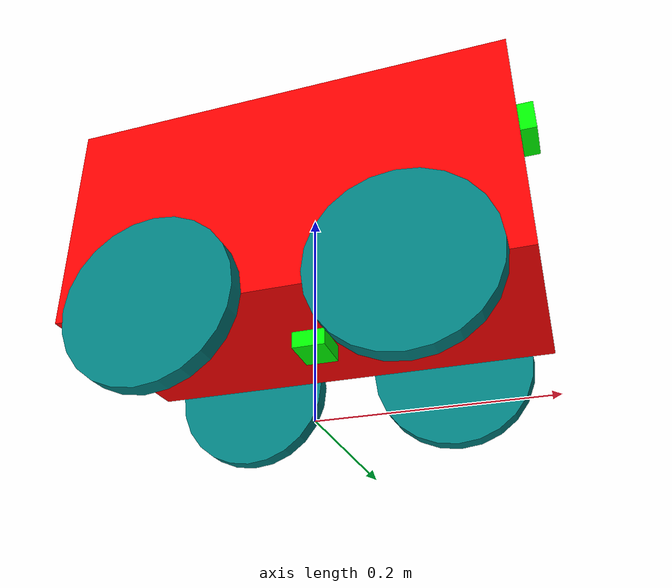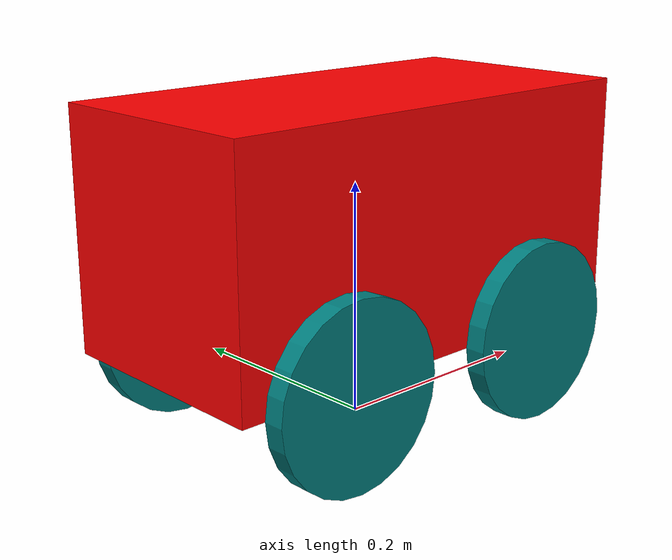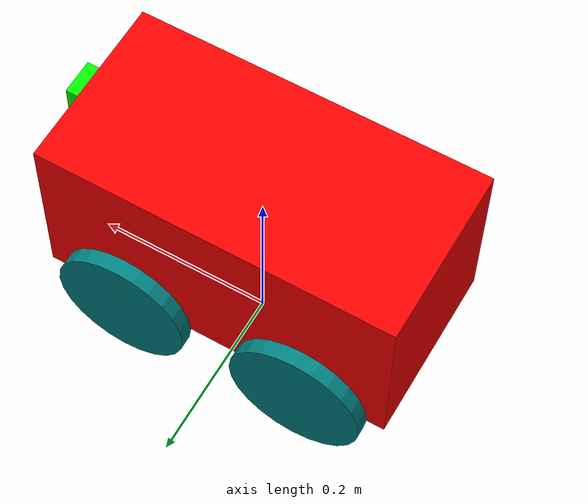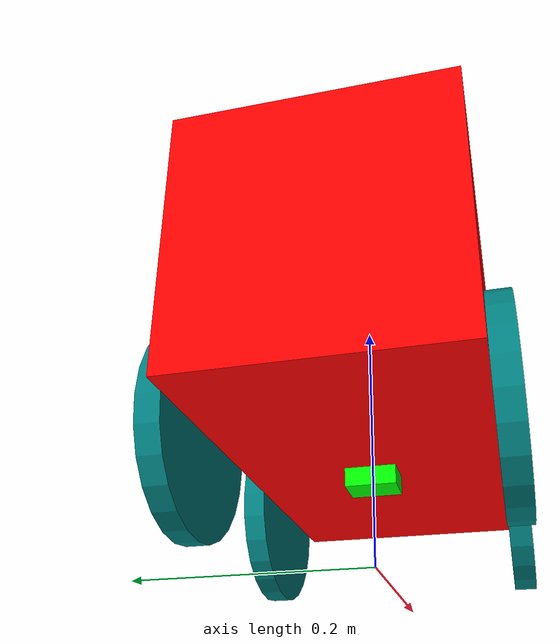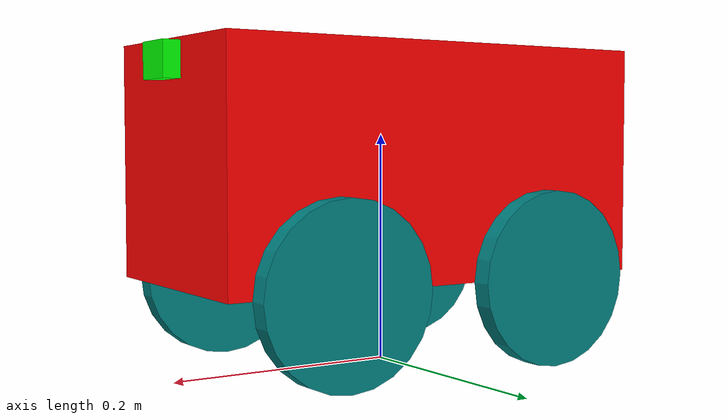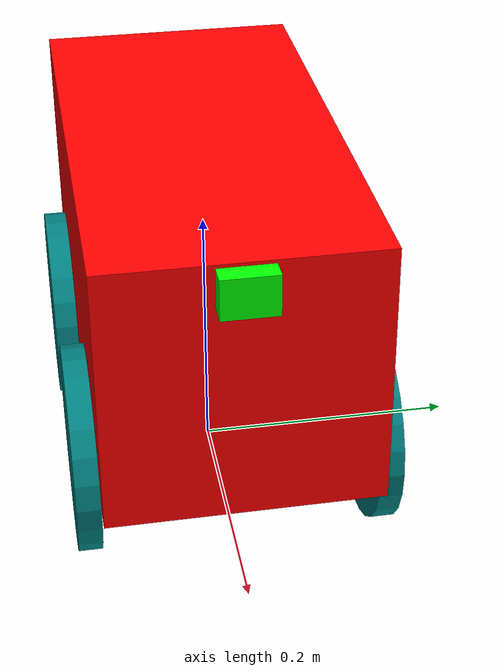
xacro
<?xml version="1.0"?>

<robot xmlns:xacro="http://www.ros.org/wiki/xacro" name="farmr">

    <xacro:property name="PI" value="3.1415"/>

    <xacro:property name="base_width" value="0.20"/>
    <xacro:property name="base_height" value="0.20"/>
    <xacro:property name="base_depth" value="0.40"/>

    <xacro:property name="wheel_rad" value="0.076"/>
    <xacro:property name="wheel_len" value="0.01750"/>
    <xacro:property name="wheel_posY" value="${base_width/2 + wheel_len/2}"/>
    <xacro:property name="wheel_offset" value="${wheel_rad}"/>
    <xacro:property name="wheel_posZ" value="-${(((base_height/2)+wheel_offset)-(wheel_rad*2))+(wheel_rad)}"/>
    <xacro:property name="wheel_posX" value="-${(base_depth/2)-(wheel_rad + 0.02)}"/>

    <xacro:property name="caster_rad" value="${wheel_rad/2.0}"/>
    <xacro:property name="caster_posZ" value="-${(((base_height/2)+wheel_offset)-(wheel_rad*2))+(wheel_rad)}"/>
    <xacro:property name="caster_posX" value="${(base_depth/2)-(wheel_rad + 0.02)}"/>

    <xacro:property name="cam_width" value="0.040"/>
    <xacro:property name="cam_height" value="0.015"/>
    <xacro:property name="cam_depth" value="0.030"/>
    <xacro:property name="cam_posZ" value="${(cam_height/2.0)+(base_height/2.0)}"/>

    <!-- ===================== MASSES (tune these to your real robot) ===================== -->
    <xacro:property name="mass_base" value="15.0"/>
    <xacro:property name="mass_wheel" value="1.2"/>
    <xacro:property name="mass_caster" value="0.15"/>
    <xacro:property name="mass_cam" value="0.05"/>

    <!-- ===================== INERTIA MACROS ===================== -->
    <!-- Solid box: dims along x, y, z -->
    <xacro:macro name="box_inertia" params="mass x y z">
        <inertia
            ixx="${(1.0/12.0)*mass*(y*y+z*z)}" ixy="0" ixz="0"
            iyy="${(1.0/12.0)*mass*(x*x+z*z)}" iyz="0"
            izz="${(1.0/12.0)*mass*(x*x+y*y)}"/>
    </xacro:macro>

    <xacro:macro name="cylinder_inertia" params="mass r h">
        <inertia
            ixx="${(1.0/12.0)*mass*(3.0*r*r+h*h)}" ixy="0" ixz="0"
            iyy="${(1.0/12.0)*mass*(3.0*r*r+h*h)}" iyz="0"
            izz="${0.5*mass*r*r}"/>
    </xacro:macro>

    <!-- Solid sphere -->
    <xacro:macro name="sphere_inertia" params="mass r">
        <inertia
            ixx="${0.4*mass*r*r}" ixy="0" ixz="0"
            iyy="${0.4*mass*r*r}" iyz="0"
            izz="${0.4*mass*r*r}"/>
    </xacro:macro>

    <material name="red">
        <color rgba="1 0 0 1"/>
    </material>
    <material name="green">
        <color rgba="0 1 0 1"/>
    </material>
    <material name="teal">
        <color rgba="0 0.5 .5 1"/>
    </material>
    <material name="white">
        <color rgba="1 1 1 1"/>
    </material>

<!--================================ LINKS ==============================================-->

    <link name="map"/>
    <link name="base_link">
        <visual>
            <origin xyz="0 0 0" rpy="0 0 0"/>
            <geometry>
                <box size="${base_depth} ${base_width} ${base_height}"/>
            </geometry>
            <material name="red"/>
        </visual>
        <collision>
            <geometry>
               <box size="${base_depth} ${base_width} ${base_height}"/>
            </geometry>
        </collision>
        <inertial>
            <origin xyz="0 0 0" rpy="0 0 0"/>
            <mass value="${mass_base}"/>
            <xacro:box_inertia mass="${mass_base}" x="${base_depth}" y="${base_width}" z="${base_height}"/>
        </inertial>
    </link>

    <link name="left_wheel_link">
        <visual>
            <geometry>
                <cylinder radius="${wheel_rad}" length="${wheel_len}"/>
            </geometry>
            <material name="teal"/>
        </visual>
        <collision>
            <geometry>
                <cylinder radius="${wheel_rad}" length="${wheel_len}"/>
            </geometry>
        </collision>
        <inertial>
            <origin xyz="0 0 0" rpy="0 0 0"/>
            <mass value="${mass_wheel}"/>
            <xacro:cylinder_inertia mass="${mass_wheel}" r="${wheel_rad}" h="${wheel_len}"/>
        </inertial>
    </link>

    <link name="right_wheel_link">
        <visual>
            <geometry>
                <cylinder radius="${wheel_rad}" length="${wheel_len}"/>
            </geometry>
            <material name="teal"/>
        </visual>
        <collision>
            <geometry>
                <cylinder radius="${wheel_rad}" length="${wheel_len}"/>
            </geometry>
        </collision>
        <inertial>
            <origin xyz="0 0 0" rpy="0 0 0"/>
            <mass value="${mass_wheel}"/>
            <xacro:cylinder_inertia mass="${mass_wheel}" r="${wheel_rad}" h="${wheel_len}"/>
        </inertial>
    </link>

    <link name="left_caster_link">
        <visual>
            <geometry>
                <cylinder radius="${wheel_rad}" length="${wheel_len}"/>
            </geometry>
            <material name="teal"/>
        </visual>
        <collision>
            <geometry>
                <cylinder radius="${wheel_rad}" length="${wheel_len}"/>
            </geometry>
        </collision>
        <inertial>
            <origin xyz="0 0 0" rpy="0 0 0"/>
            <mass value="${mass_wheel}"/>
            <xacro:cylinder_inertia mass="${mass_wheel}" r="${wheel_rad}" h="${wheel_len}"/>
        </inertial>
    </link>

    <link name="right_caster_link">
        <visual>
            <geometry>
                <cylinder radius="${wheel_rad}" length="${wheel_len}"/>
            </geometry>
            <material name="teal"/>
        </visual>
        <collision>
            <geometry>
                <cylinder radius="${wheel_rad}" length="${wheel_len}"/>
            </geometry>
        </collision>
        <inertial>
            <origin xyz="0 0 0" rpy="0 0 0"/>
            <mass value="${mass_wheel}"/>
            <xacro:cylinder_inertia mass="${mass_wheel}" r="${wheel_rad}" h="${wheel_len}"/>
        </inertial>
    </link>

    <link name="nav_cam_link">
        <visual>
            <geometry>
                <box size="${cam_height} ${cam_width} ${cam_depth}"/>

            </geometry>
            <material name="green"/>
        </visual>
        <collision>
            <geometry>
                <box size="${cam_height} ${cam_width} ${cam_depth}"/>
            </geometry>
        </collision>
        <inertial>
            <origin xyz="0 0 0" rpy="0 0 0"/>
            <mass value="${mass_cam}"/>
            <xacro:box_inertia mass="${mass_cam}" x="${cam_height}" y="${cam_width}" z="${cam_depth}"/>
        </inertial>
    </link>

    <link name="nav_cam_optical"/>

    <link name="crop_cam_link">
        <visual>
            <geometry>
                <box size="${cam_depth} ${cam_width} ${cam_height}"/>
            </geometry>
            <material name="green"/>
        </visual>
        <collision>
            <geometry>
                <box size="${cam_depth} ${cam_width} ${cam_height}"/>
            </geometry>
        </collision>
        <inertial>
            <origin xyz="0 0 0" rpy="0 0 0"/>
            <mass value="${mass_cam}"/>
            <xacro:box_inertia mass="${mass_cam}" x="${cam_depth}" y="${cam_width}" z="${cam_height}"/>
        </inertial>
    </link>

<!--========================================== JOINT ============================================== -->

    <joint name="map_base_joint" type="fixed">
        <parent link="map"/>
        <child link="base_link"/>
        <origin xyz="0 0 ${(base_height/2)+wheel_rad}" rpy="0 0 0"/>
    </joint>
    <joint name="base_left_wheel_joint" type="continuous">
        <parent link="base_link"/>
        <child link="left_wheel_link"/>
        <origin xyz="${wheel_posX} ${wheel_posY} ${wheel_posZ}" rpy="${PI/2.0} 0 0"/>
        <axis xyz="0 0 1"/>
    </joint>

    <joint name="base_right_wheel_joint" type="continuous">
        <parent link="base_link"/>
        <child link="right_wheel_link"/>
        <origin xyz="${wheel_posX} -${wheel_posY} ${wheel_posZ}" rpy="${PI/2.0} 0 0"/>
        <axis xyz="0 0 1"/>
    </joint>

    <joint name="base_caster_left_joint" type="fixed">
        <parent link="base_link"/>
        <child link="left_caster_link"/>
        <origin xyz="${caster_posX} -${wheel_posY} ${caster_posZ}" rpy="${PI/2.0} 0 0"/>
    </joint>

    <joint name="base_caster_right_joint" type="fixed">
        <parent link="base_link"/>
        <child link="right_caster_link"/>
        <origin xyz="${caster_posX} ${wheel_posY} ${caster_posZ}" rpy="${PI/2.0} 0 0"/>
    </joint>

    <joint name="base_nav_cam_joint" type="fixed">
        <parent link="base_link"/>
        <child link="nav_cam_link"/>
        <origin xyz="${(base_depth/2.0)+(cam_height/2)} 0 ${cam_posZ-0.025}" rpy="0 0 0"/>
    </joint>

    <joint name="nav_optical_joint" type="fixed">
        <parent link="nav_cam_link"/>
        <child link="nav_cam_optical"/>
        <origin xyz="0 0 0" rpy="0 0 0"/>
    </joint>

    <joint name="base_crop_cam_joint" type="fixed">
        <parent link="base_link"/>
        <child link="crop_cam_link"/>
        <origin xyz="0 0 -${cam_posZ}" rpy="0 0 0"/>
    </joint>

      <!--    GAZEBO PLUGINS    -->

      <!-- Diff drive plugin -->
      <gazebo>
        <plugin filename="gz-sim-diff-drive-system"
                name="gz::sim::systems::DiffDrive">
          <left_joint>base_left_wheel_joint</left_joint>
          <right_joint>base_right_wheel_joint</right_joint>
          <wheel_separation>0.25</wheel_separation>
          <wheel_radius>0.04</wheel_radius>
          <topic>cmd_vel</topic>
          <odom_topic>odom</odom_topic>
          <frame_id>odom</frame_id>
          <child_frame_id>map</child_frame_id>
          <odom_publish_frequency>30</odom_publish_frequency>
        </plugin>
      </gazebo>

      <!-- Joint state publisher plugin -->
      <gazebo>
        <plugin filename="gz-sim-joint-state-publisher-system"
                name="gz::sim::systems::JointStatePublisher">
          <joint_name>base_left_wheel_joint</joint_name>
          <joint_name>base_right_wheel_joint</joint_name>
          <topic>joint_states</topic>
        </plugin>
      </gazebo>

      <!--   CAMERA SENSOR (NEW)                        -->
      <gazebo reference="nav_cam_link">
        <sensor name="camera" type="camera">
          <pose>0 0 0 0 0 0</pose>
          <topic>camera/image</topic>
          <gz_frame_id>nav_cam_optical</gz_frame_id>
          <update_rate>30</update_rate>
          <always_on>true</always_on>
          <visualize>true</visualize>
          <camera>
            <horizontal_fov>1.3962634</horizontal_fov>
            <image>
              <width>640</width>
              <height>480</height>
              <format>R8G8B8</format>
            </image>
            <clip>
              <near>0.05</near>
              <far>50.0</far>
            </clip>
            <noise>
              <type>gaussian</type>
              <mean>0.0</mean>
              <stddev>0.005</stddev>
            </noise>
          </camera>
        </sensor>
      </gazebo>

</robot>
